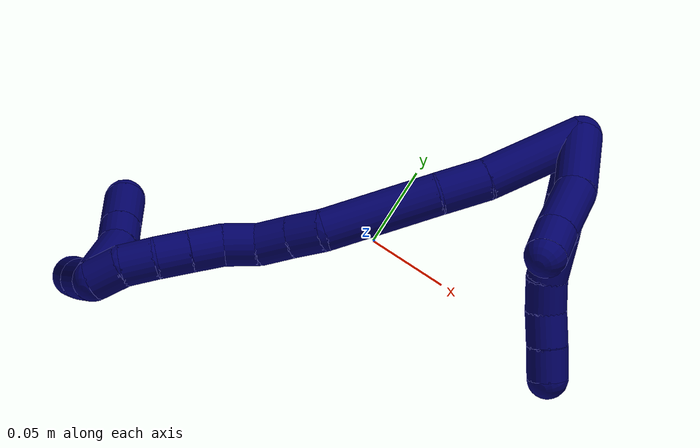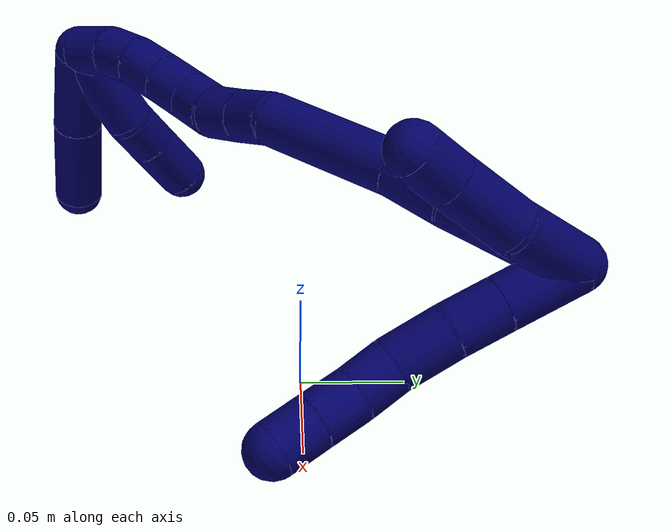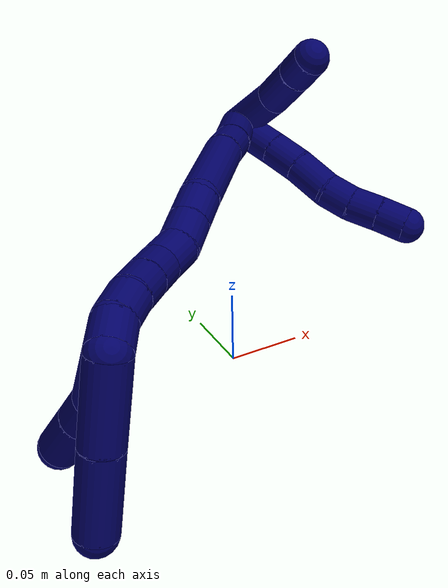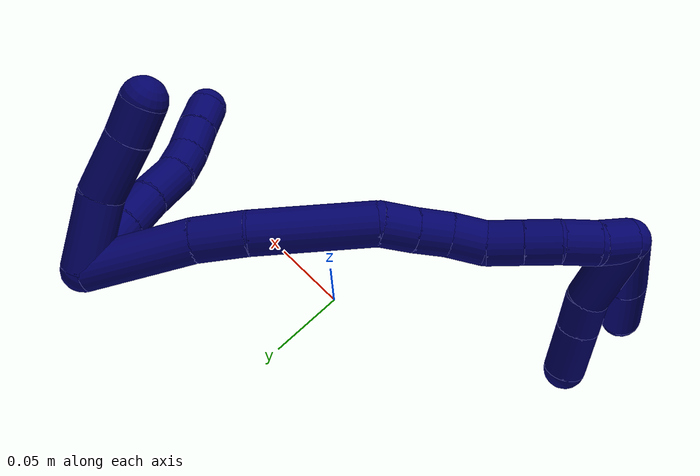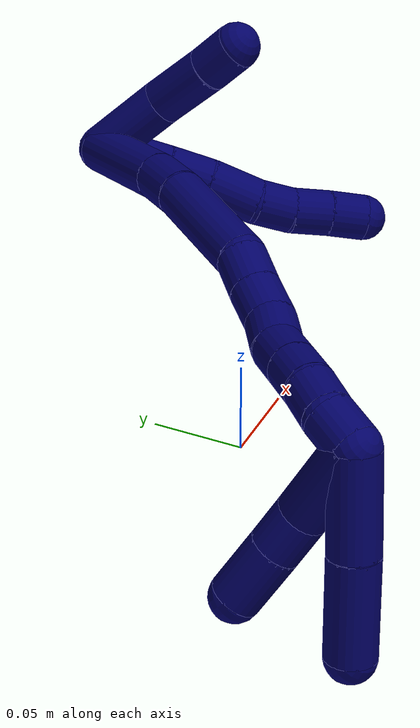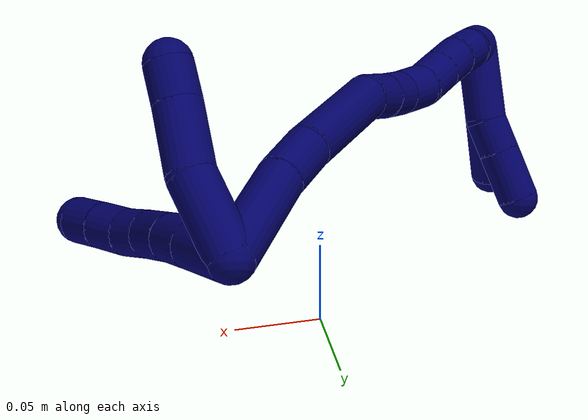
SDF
<sdf version="1.7">
 <world name="default">
  <model name="7">
   <static>0</static>
   <link name="7">
    <collision name="collision-cylinder-e_1_2_8">
     <pose>0.006105 -0.015964 0.006545 1.18171 0.340089 0.229342</pose>
     <geometry><cylinder><radius>0.0125</radius><length>0.036603</length></cylinder></geometry>
     <surface>
      <friction><ode><mu>1.16</mu><mu2>1.16</mu2><slip1>0</slip1><slip2>0</slip2></ode></friction>
      <contact><ode><kp>1e+06</kp><kd>1</kd><max_vel>0</max_vel><min_depth>0.001</min_depth></ode></contact>
     </surface>
    </collision>
    <visual name="visual-cylinder-e_1_2_8">
     <pose>0.006105 -0.015964 0.006545 1.18171 0.340089 0.229342</pose>
     <geometry><cylinder><radius>0.0125</radius><length>0.036603</length></cylinder></geometry>
     <material><ambient>0.003922 0 0.403922 1</ambient></material>
    </visual>
    <collision name="collision-cylinder-e_2_8_9">
     <pose>0.016031 -0.042451 0.017179 1.2002 0.326389 0.224401</pose>
     <geometry><cylinder><radius>0.0125</radius><length>0.023838</length></cylinder></geometry>
     <surface>
      <friction><ode><mu>1.16</mu><mu2>1.16</mu2><slip1>0</slip1><slip2>0</slip2></ode></friction>
      <contact><ode><kp>1e+06</kp><kd>1</kd><max_vel>0</max_vel><min_depth>0.001</min_depth></ode></contact>
     </surface>
    </collision>
    <visual name="visual-cylinder-e_2_8_9">
     <pose>0.016031 -0.042451 0.017179 1.2002 0.326389 0.224401</pose>
     <geometry><cylinder><radius>0.0125</radius><length>0.023838</length></cylinder></geometry>
     <material><ambient>0.003922 0 0.403922 1</ambient></material>
    </visual>
    <collision name="collision-cylinder-e_3_9_10">
     <pose>0.023799 -0.06582 0.024997 1.28823 0.286868 0.21607</pose>
     <geometry><cylinder><radius>0.0125</radius><length>0.027892</length></cylinder></geometry>
     <surface>
      <friction><ode><mu>1.16</mu><mu2>1.16</mu2><slip1>0</slip1><slip2>0</slip2></ode></friction>
      <contact><ode><kp>1e+06</kp><kd>1</kd><max_vel>0</max_vel><min_depth>0.001</min_depth></ode></contact>
     </surface>
    </collision>
    <visual name="visual-cylinder-e_3_9_10">
     <pose>0.023799 -0.06582 0.024997 1.28823 0.286868 0.21607</pose>
     <geometry><cylinder><radius>0.0125</radius><length>0.027892</length></cylinder></geometry>
     <material><ambient>0.003922 0 0.403922 1</ambient></material>
    </visual>
    <collision name="collision-cylinder-e_4_10_11">
     <pose>0.032647 -0.08708 0.031228 1.28185 0.509343 0.383619</pose>
     <geometry><cylinder><radius>0.0125</radius><length>0.020109</length></cylinder></geometry>
     <surface>
      <friction><ode><mu>1.16</mu><mu2>1.16</mu2><slip1>0</slip1><slip2>0</slip2></ode></friction>
      <contact><ode><kp>1e+06</kp><kd>1</kd><max_vel>0</max_vel><min_depth>0.001</min_depth></ode></contact>
     </surface>
    </collision>
    <visual name="visual-cylinder-e_4_10_11">
     <pose>0.032647 -0.08708 0.031228 1.28185 0.509343 0.383619</pose>
     <geometry><cylinder><radius>0.0125</radius><length>0.020109</length></cylinder></geometry>
     <material><ambient>0.003922 0 0.403922 1</ambient></material>
    </visual>
    <collision name="collision-cylinder-e_5_11_12">
     <pose>0.043566 -0.103343 0.037544 1.11847 0.603567 0.384842</pose>
     <geometry><cylinder><radius>0.0125</radius><length>0.0212</length></cylinder></geometry>
     <surface>
      <friction><ode><mu>1.16</mu><mu2>1.16</mu2><slip1>0</slip1><slip2>0</slip2></ode></friction>
      <contact><ode><kp>1e+06</kp><kd>1</kd><max_vel>0</max_vel><min_depth>0.001</min_depth></ode></contact>
     </surface>
    </collision>
    <visual name="visual-cylinder-e_5_11_12">
     <pose>0.043566 -0.103343 0.037544 1.11847 0.603567 0.384842</pose>
     <geometry><cylinder><radius>0.0125</radius><length>0.0212</length></cylinder></geometry>
     <material><ambient>0.003922 0 0.403922 1</ambient></material>
    </visual>
    <collision name="collision-cylinder-e_6_12_6">
     <pose>0.055074 -0.119047 0.044788 1.15908 0.569826 0.378793</pose>
     <geometry><cylinder><radius>0.0125</radius><length>0.020358</length></cylinder></geometry>
     <surface>
      <friction><ode><mu>1.16</mu><mu2>1.16</mu2><slip1>0</slip1><slip2>0</slip2></ode></friction>
      <contact><ode><kp>1e+06</kp><kd>1</kd><max_vel>0</max_vel><min_depth>0.001</min_depth></ode></contact>
     </surface>
    </collision>
    <visual name="visual-cylinder-e_6_12_6">
     <pose>0.055074 -0.119047 0.044788 1.15908 0.569826 0.378793</pose>
     <geometry><cylinder><radius>0.0125</radius><length>0.020358</length></cylinder></geometry>
     <material><ambient>0.003922 0 0.403922 1</ambient></material>
    </visual>
    <collision name="collision-cylinder-e_1_2_13">
     <pose>0.007605 -0.002087 0.020186 0.103021 0.358558 0.018686</pose>
     <geometry><cylinder><radius>0.0125</radius><length>0.043343</length></cylinder></geometry>
     <surface>
      <friction><ode><mu>1.16</mu><mu2>1.16</mu2><slip1>0</slip1><slip2>0</slip2></ode></friction>
      <contact><ode><kp>1e+06</kp><kd>1</kd><max_vel>0</max_vel><min_depth>0.001</min_depth></ode></contact>
     </surface>
    </collision>
    <visual name="visual-cylinder-e_1_2_13">
     <pose>0.007605 -0.002087 0.020186 0.103021 0.358558 0.018686</pose>
     <geometry><cylinder><radius>0.0125</radius><length>0.043343</length></cylinder></geometry>
     <material><ambient>0.003922 0 0.403922 1</ambient></material>
    </visual>
    <collision name="collision-cylinder-e_2_13_14">
     <pose>0.017107 -0.006136 0.057957 0.111115 0.106773 0.005944</pose>
     <geometry><cylinder><radius>0.0125</radius><length>0.035591</length></cylinder></geometry>
     <surface>
      <friction><ode><mu>1.16</mu><mu2>1.16</mu2><slip1>0</slip1><slip2>0</slip2></ode></friction>
      <contact><ode><kp>1e+06</kp><kd>1</kd><max_vel>0</max_vel><min_depth>0.001</min_depth></ode></contact>
     </surface>
    </collision>
    <visual name="visual-cylinder-e_2_13_14">
     <pose>0.017107 -0.006136 0.057957 0.111115 0.106773 0.005944</pose>
     <geometry><cylinder><radius>0.0125</radius><length>0.035591</length></cylinder></geometry>
     <material><ambient>0.003922 0 0.403922 1</ambient></material>
    </visual>
    <collision name="collision-cylinder-e_3_14_5">
     <pose>0.020588 -0.008856 0.085927 0.072875 0.15109 0.005518</pose>
     <geometry><cylinder><radius>0.0125</radius><length>0.021066</length></cylinder></geometry>
     <surface>
      <friction><ode><mu>1.16</mu><mu2>1.16</mu2><slip1>0</slip1><slip2>0</slip2></ode></friction>
      <contact><ode><kp>1e+06</kp><kd>1</kd><max_vel>0</max_vel><min_depth>0.001</min_depth></ode></contact>
     </surface>
    </collision>
    <visual name="visual-cylinder-e_3_14_5">
     <pose>0.020588 -0.008856 0.085927 0.072875 0.15109 0.005518</pose>
     <geometry><cylinder><radius>0.0125</radius><length>0.021066</length></cylinder></geometry>
     <material><ambient>0.003922 0 0.403922 1</ambient></material>
    </visual>
    <collision name="collision-cylinder-e_1_2_15">
     <pose>-0.015772 -0.014729 0.021923 0.591577 -0.538339 -0.167733</pose>
     <geometry><cylinder><radius>0.0125</radius><length>0.061524</length></cylinder></geometry>
     <surface>
      <friction><ode><mu>1.16</mu><mu2>1.16</mu2><slip1>0</slip1><slip2>0</slip2></ode></friction>
      <contact><ode><kp>1e+06</kp><kd>1</kd><max_vel>0</max_vel><min_depth>0.001</min_depth></ode></contact>
     </surface>
    </collision>
    <visual name="visual-cylinder-e_1_2_15">
     <pose>-0.015772 -0.014729 0.021923 0.591577 -0.538339 -0.167733</pose>
     <geometry><cylinder><radius>0.0125</radius><length>0.061524</length></cylinder></geometry>
     <material><ambient>0.003922 0 0.403922 1</ambient></material>
    </visual>
    <collision name="collision-cylinder-e_2_15_16">
     <pose>-0.040506 -0.03593 0.053283 0.601197 -0.664354 -0.213059</pose>
     <geometry><cylinder><radius>0.0125</radius><length>0.029072</length></cylinder></geometry>
     <surface>
      <friction><ode><mu>1.16</mu><mu2>1.16</mu2><slip1>0</slip1><slip2>0</slip2></ode></friction>
      <contact><ode><kp>1e+06</kp><kd>1</kd><max_vel>0</max_vel><min_depth>0.001</min_depth></ode></contact>
     </surface>
    </collision>
    <visual name="visual-cylinder-e_2_15_16">
     <pose>-0.040506 -0.03593 0.053283 0.601197 -0.664354 -0.213059</pose>
     <geometry><cylinder><radius>0.0125</radius><length>0.029072</length></cylinder></geometry>
     <material><ambient>0.003922 0 0.403922 1</ambient></material>
    </visual>
    <collision name="collision-cylinder-e_3_16_17">
     <pose>-0.071037 -0.061234 0.081781 0.779349 -0.677794 -0.287525</pose>
     <geometry><cylinder><radius>0.0125</radius><length>0.068792</length></cylinder></geometry>
     <surface>
      <friction><ode><mu>1.16</mu><mu2>1.16</mu2><slip1>0</slip1><slip2>0</slip2></ode></friction>
      <contact><ode><kp>1e+06</kp><kd>1</kd><max_vel>0</max_vel><min_depth>0.001</min_depth></ode></contact>
     </surface>
    </collision>
    <visual name="visual-cylinder-e_3_16_17">
     <pose>-0.071037 -0.061234 0.081781 0.779349 -0.677794 -0.287525</pose>
     <geometry><cylinder><radius>0.0125</radius><length>0.068792</length></cylinder></geometry>
     <material><ambient>0.003922 0 0.403922 1</ambient></material>
    </visual>
    <collision name="collision-cylinder-e_4_17_18">
     <pose>-0.099607 -0.086891 0.103262 1.22994 -0.768413 -0.55634</pose>
     <geometry><cylinder><radius>0.0125</radius><length>0.020146</length></cylinder></geometry>
     <surface>
      <friction><ode><mu>1.16</mu><mu2>1.16</mu2><slip1>0</slip1><slip2>0</slip2></ode></friction>
      <contact><ode><kp>1e+06</kp><kd>1</kd><max_vel>0</max_vel><min_depth>0.001</min_depth></ode></contact>
     </surface>
    </collision>
    <visual name="visual-cylinder-e_4_17_18">
     <pose>-0.099607 -0.086891 0.103262 1.22994 -0.768413 -0.55634</pose>
     <geometry><cylinder><radius>0.0125</radius><length>0.020146</length></cylinder></geometry>
     <material><ambient>0.003922 0 0.403922 1</ambient></material>
    </visual>
    <collision name="collision-cylinder-e_5_18_19">
     <pose>-0.113511 -0.100512 0.108679 1.15547 -0.748962 -0.501667</pose>
     <geometry><cylinder><radius>0.0125</radius><length>0.02028</length></cylinder></geometry>
     <surface>
      <friction><ode><mu>1.16</mu><mu2>1.16</mu2><slip1>0</slip1><slip2>0</slip2></ode></friction>
      <contact><ode><kp>1e+06</kp><kd>1</kd><max_vel>0</max_vel><min_depth>0.001</min_depth></ode></contact>
     </surface>
    </collision>
    <visual name="visual-cylinder-e_5_18_19">
     <pose>-0.113511 -0.100512 0.108679 1.15547 -0.748962 -0.501667</pose>
     <geometry><cylinder><radius>0.0125</radius><length>0.02028</length></cylinder></geometry>
     <material><ambient>0.003922 0 0.403922 1</ambient></material>
    </visual>
    <collision name="collision-cylinder-e_6_19_20">
     <pose>-0.128815 -0.111572 0.115235 0.875329 -0.986515 -0.492874</pose>
     <geometry><cylinder><radius>0.0125</radius><length>0.02014</length></cylinder></geometry>
     <surface>
      <friction><ode><mu>1.16</mu><mu2>1.16</mu2><slip1>0</slip1><slip2>0</slip2></ode></friction>
      <contact><ode><kp>1e+06</kp><kd>1</kd><max_vel>0</max_vel><min_depth>0.001</min_depth></ode></contact>
     </surface>
    </collision>
    <visual name="visual-cylinder-e_6_19_20">
     <pose>-0.128815 -0.111572 0.115235 0.875329 -0.986515 -0.492874</pose>
     <geometry><cylinder><radius>0.0125</radius><length>0.02014</length></cylinder></geometry>
     <material><ambient>0.003922 0 0.403922 1</ambient></material>
    </visual>
    <collision name="collision-cylinder-e_7_20_21">
     <pose>-0.144196 -0.11994 0.124664 0.610057 -0.772585 -0.254734</pose>
     <geometry><cylinder><radius>0.0125</radius><length>0.020004</length></cylinder></geometry>
     <surface>
      <friction><ode><mu>1.16</mu><mu2>1.16</mu2><slip1>0</slip1><slip2>0</slip2></ode></friction>
      <contact><ode><kp>1e+06</kp><kd>1</kd><max_vel>0</max_vel><min_depth>0.001</min_depth></ode></contact>
     </surface>
    </collision>
    <visual name="visual-cylinder-e_7_20_21">
     <pose>-0.144196 -0.11994 0.124664 0.610057 -0.772585 -0.254734</pose>
     <geometry><cylinder><radius>0.0125</radius><length>0.020004</length></cylinder></geometry>
     <material><ambient>0.003922 0 0.403922 1</ambient></material>
    </visual>
    <collision name="collision-cylinder-e_8_21_22">
     <pose>-0.15816 -0.128334 0.136294 0.640281 -0.771385 -0.267625</pose>
     <geometry><cylinder><radius>0.0125</radius><length>0.020035</length></cylinder></geometry>
     <surface>
      <friction><ode><mu>1.16</mu><mu2>1.16</mu2><slip1>0</slip1><slip2>0</slip2></ode></friction>
      <contact><ode><kp>1e+06</kp><kd>1</kd><max_vel>0</max_vel><min_depth>0.001</min_depth></ode></contact>
     </surface>
    </collision>
    <visual name="visual-cylinder-e_8_21_22">
     <pose>-0.15816 -0.128334 0.136294 0.640281 -0.771385 -0.267625</pose>
     <geometry><cylinder><radius>0.0125</radius><length>0.020035</length></cylinder></geometry>
     <material><ambient>0.003922 0 0.403922 1</ambient></material>
    </visual>
    <collision name="collision-cylinder-e_9_22_23">
     <pose>-0.172073 -0.138152 0.14669 0.872824 -0.765242 -0.371096</pose>
     <geometry><cylinder><radius>0.0125</radius><length>0.020007</length></cylinder></geometry>
     <surface>
      <friction><ode><mu>1.16</mu><mu2>1.16</mu2><slip1>0</slip1><slip2>0</slip2></ode></friction>
      <contact><ode><kp>1e+06</kp><kd>1</kd><max_vel>0</max_vel><min_depth>0.001</min_depth></ode></contact>
     </surface>
    </collision>
    <visual name="visual-cylinder-e_9_22_23">
     <pose>-0.172073 -0.138152 0.14669 0.872824 -0.765242 -0.371096</pose>
     <geometry><cylinder><radius>0.0125</radius><length>0.020007</length></cylinder></geometry>
     <material><ambient>0.003922 0 0.403922 1</ambient></material>
    </visual>
    <collision name="collision-cylinder-e_10_23_1">
     <pose>-0.184174 -0.15134 0.155146 1.10837 -0.543416 -0.341477</pose>
     <geometry><cylinder><radius>0.0125</radius><length>0.020001</length></cylinder></geometry>
     <surface>
      <friction><ode><mu>1.16</mu><mu2>1.16</mu2><slip1>0</slip1><slip2>0</slip2></ode></friction>
      <contact><ode><kp>1e+06</kp><kd>1</kd><max_vel>0</max_vel><min_depth>0.001</min_depth></ode></contact>
     </surface>
    </collision>
    <visual name="visual-cylinder-e_10_23_1">
     <pose>-0.184174 -0.15134 0.155146 1.10837 -0.543416 -0.341477</pose>
     <geometry><cylinder><radius>0.0125</radius><length>0.020001</length></cylinder></geometry>
     <material><ambient>0.003922 0 0.403922 1</ambient></material>
    </visual>
    <collision name="collision-cylinder-e_1_1_24">
     <pose>-0.196191 -0.176965 0.143258 2.28926 -0.279413 -0.600752</pose>
     <geometry><cylinder><radius>0.0125</radius><length>0.049649</length></cylinder></geometry>
     <surface>
      <friction><ode><mu>1.16</mu><mu2>1.16</mu2><slip1>0</slip1><slip2>0</slip2></ode></friction>
      <contact><ode><kp>1e+06</kp><kd>1</kd><max_vel>0</max_vel><min_depth>0.001</min_depth></ode></contact>
     </surface>
    </collision>
    <visual name="visual-cylinder-e_1_1_24">
     <pose>-0.196191 -0.176965 0.143258 2.28926 -0.279413 -0.600752</pose>
     <geometry><cylinder><radius>0.0125</radius><length>0.049649</length></cylinder></geometry>
     <material><ambient>0.003922 0 0.403922 1</ambient></material>
    </visual>
    <collision name="collision-cylinder-e_2_24_4">
     <pose>-0.209402 -0.212599 0.110788 2.32986 -0.255599 -0.581128</pose>
     <geometry><cylinder><radius>0.0125</radius><length>0.050351</length></cylinder></geometry>
     <surface>
      <friction><ode><mu>1.16</mu><mu2>1.16</mu2><slip1>0</slip1><slip2>0</slip2></ode></friction>
      <contact><ode><kp>1e+06</kp><kd>1</kd><max_vel>0</max_vel><min_depth>0.001</min_depth></ode></contact>
     </surface>
    </collision>
    <visual name="visual-cylinder-e_2_24_4">
     <pose>-0.209402 -0.212599 0.110788 2.32986 -0.255599 -0.581128</pose>
     <geometry><cylinder><radius>0.0125</radius><length>0.050351</length></cylinder></geometry>
     <material><ambient>0.003922 0 0.403922 1</ambient></material>
    </visual>
    <collision name="collision-cylinder-e_1_1_25">
     <pose>-0.191756 -0.164448 0.13635 2.90522 -0.103293 -0.821185</pose>
     <geometry><cylinder><radius>0.0125</radius><length>0.046771</length></cylinder></geometry>
     <surface>
      <friction><ode><mu>1.16</mu><mu2>1.16</mu2><slip1>0</slip1><slip2>0</slip2></ode></friction>
      <contact><ode><kp>1e+06</kp><kd>1</kd><max_vel>0</max_vel><min_depth>0.001</min_depth></ode></contact>
     </surface>
    </collision>
    <visual name="visual-cylinder-e_1_1_25">
     <pose>-0.191756 -0.164448 0.13635 2.90522 -0.103293 -0.821185</pose>
     <geometry><cylinder><radius>0.0125</radius><length>0.046771</length></cylinder></geometry>
     <material><ambient>0.003922 0 0.403922 1</ambient></material>
    </visual>
    <collision name="collision-cylinder-e_2_25_26">
     <pose>-0.198024 -0.171984 0.103919 2.932 -0.366904 -2.11013</pose>
     <geometry><cylinder><radius>0.0125</radius><length>0.021505</length></cylinder></geometry>
     <surface>
      <friction><ode><mu>1.16</mu><mu2>1.16</mu2><slip1>0</slip1><slip2>0</slip2></ode></friction>
      <contact><ode><kp>1e+06</kp><kd>1</kd><max_vel>0</max_vel><min_depth>0.001</min_depth></ode></contact>
     </surface>
    </collision>
    <visual name="visual-cylinder-e_2_25_26">
     <pose>-0.198024 -0.171984 0.103919 2.932 -0.366904 -2.11013</pose>
     <geometry><cylinder><radius>0.0125</radius><length>0.021505</length></cylinder></geometry>
     <material><ambient>0.003922 0 0.403922 1</ambient></material>
    </visual>
    <collision name="collision-cylinder-e_3_26_3">
     <pose>-0.207472 -0.176988 0.079547 2.9439 -0.360213 -2.14415</pose>
     <geometry><cylinder><radius>0.0125</radius><length>0.031724</length></cylinder></geometry>
     <surface>
      <friction><ode><mu>1.16</mu><mu2>1.16</mu2><slip1>0</slip1><slip2>0</slip2></ode></friction>
      <contact><ode><kp>1e+06</kp><kd>1</kd><max_vel>0</max_vel><min_depth>0.001</min_depth></ode></contact>
     </surface>
    </collision>
    <visual name="visual-cylinder-e_3_26_3">
     <pose>-0.207472 -0.176988 0.079547 2.9439 -0.360213 -2.14415</pose>
     <geometry><cylinder><radius>0.0125</radius><length>0.031724</length></cylinder></geometry>
     <material><ambient>0.003922 0 0.403922 1</ambient></material>
    </visual>
    <collision name="collision-sphere-3">
     <pose>-0.213063 -0.179903 0.064992 0 -0 0</pose>
     <geometry><sphere><radius>0.0125</radius></sphere></geometry>
     <surface>
      <friction><ode><mu>1.16</mu><mu2>1.16</mu2><slip1>0</slip1><slip2>0</slip2></ode></friction>
      <contact><ode><kp>1e+06</kp><kd>1</kd><max_vel>0</max_vel><min_depth>0.001</min_depth></ode></contact>
     </surface>
    </collision>
    <visual name="visual-sphere-3">
     <pose>-0.213063 -0.179903 0.064992 0 -0 0</pose>
     <geometry><sphere><radius>0.0125</radius></sphere></geometry>
     <material><ambient>0.003922 0 0.403922 1</ambient></material>
    </visual>
    <collision name="collision-sphere-26">
     <pose>-0.201882 -0.174072 0.094101 0 -0 0</pose>
     <geometry><sphere><radius>0.0125</radius></sphere></geometry>
     <surface>
      <friction><ode><mu>1.16</mu><mu2>1.16</mu2><slip1>0</slip1><slip2>0</slip2></ode></friction>
      <contact><ode><kp>1e+06</kp><kd>1</kd><max_vel>0</max_vel><min_depth>0.001</min_depth></ode></contact>
     </surface>
    </collision>
    <visual name="visual-sphere-26">
     <pose>-0.201882 -0.174072 0.094101 0 -0 0</pose>
     <geometry><sphere><radius>0.0125</radius></sphere></geometry>
     <material><ambient>0.003922 0 0.403922 1</ambient></material>
    </visual>
    <collision name="collision-sphere-25">
     <pose>-0.194167 -0.169896 0.113736 0 -0 0</pose>
     <geometry><sphere><radius>0.0125</radius></sphere></geometry>
     <surface>
      <friction><ode><mu>1.16</mu><mu2>1.16</mu2><slip1>0</slip1><slip2>0</slip2></ode></friction>
      <contact><ode><kp>1e+06</kp><kd>1</kd><max_vel>0</max_vel><min_depth>0.001</min_depth></ode></contact>
     </surface>
    </collision>
    <visual name="visual-sphere-25">
     <pose>-0.194167 -0.169896 0.113736 0 -0 0</pose>
     <geometry><sphere><radius>0.0125</radius></sphere></geometry>
     <material><ambient>0.003922 0 0.403922 1</ambient></material>
    </visual>
    <collision name="collision-sphere-4">
     <pose>-0.215767 -0.23027 0.094024 0 -0 0</pose>
     <geometry><sphere><radius>0.0125</radius></sphere></geometry>
     <surface>
      <friction><ode><mu>1.16</mu><mu2>1.16</mu2><slip1>0</slip1><slip2>0</slip2></ode></friction>
      <contact><ode><kp>1e+06</kp><kd>1</kd><max_vel>0</max_vel><min_depth>0.001</min_depth></ode></contact>
     </surface>
    </collision>
    <visual name="visual-sphere-4">
     <pose>-0.215767 -0.23027 0.094024 0 -0 0</pose>
     <geometry><sphere><radius>0.0125</radius></sphere></geometry>
     <material><ambient>0.003922 0 0.403922 1</ambient></material>
    </visual>
    <collision name="collision-sphere-24">
     <pose>-0.203037 -0.194928 0.127551 0 -0 0</pose>
     <geometry><sphere><radius>0.0125</radius></sphere></geometry>
     <surface>
      <friction><ode><mu>1.16</mu><mu2>1.16</mu2><slip1>0</slip1><slip2>0</slip2></ode></friction>
      <contact><ode><kp>1e+06</kp><kd>1</kd><max_vel>0</max_vel><min_depth>0.001</min_depth></ode></contact>
     </surface>
    </collision>
    <visual name="visual-sphere-24">
     <pose>-0.203037 -0.194928 0.127551 0 -0 0</pose>
     <geometry><sphere><radius>0.0125</radius></sphere></geometry>
     <material><ambient>0.003922 0 0.403922 1</ambient></material>
    </visual>
    <collision name="collision-sphere-1">
     <pose>-0.189345 -0.159001 0.158964 0 -0 0</pose>
     <geometry><sphere><radius>0.0125</radius></sphere></geometry>
     <surface>
      <friction><ode><mu>1.16</mu><mu2>1.16</mu2><slip1>0</slip1><slip2>0</slip2></ode></friction>
      <contact><ode><kp>1e+06</kp><kd>1</kd><max_vel>0</max_vel><min_depth>0.001</min_depth></ode></contact>
     </surface>
    </collision>
    <visual name="visual-sphere-1">
     <pose>-0.189345 -0.159001 0.158964 0 -0 0</pose>
     <geometry><sphere><radius>0.0125</radius></sphere></geometry>
     <material><ambient>0.003922 0 0.403922 1</ambient></material>
    </visual>
    <collision name="collision-sphere-23">
     <pose>-0.179003 -0.143679 0.151327 0 -0 0</pose>
     <geometry><sphere><radius>0.0125</radius></sphere></geometry>
     <surface>
      <friction><ode><mu>1.16</mu><mu2>1.16</mu2><slip1>0</slip1><slip2>0</slip2></ode></friction>
      <contact><ode><kp>1e+06</kp><kd>1</kd><max_vel>0</max_vel><min_depth>0.001</min_depth></ode></contact>
     </surface>
    </collision>
    <visual name="visual-sphere-23">
     <pose>-0.179003 -0.143679 0.151327 0 -0 0</pose>
     <geometry><sphere><radius>0.0125</radius></sphere></geometry>
     <material><ambient>0.003922 0 0.403922 1</ambient></material>
    </visual>
    <collision name="collision-sphere-22">
     <pose>-0.165144 -0.132624 0.142054 0 -0 0</pose>
     <geometry><sphere><radius>0.0125</radius></sphere></geometry>
     <surface>
      <friction><ode><mu>1.16</mu><mu2>1.16</mu2><slip1>0</slip1><slip2>0</slip2></ode></friction>
      <contact><ode><kp>1e+06</kp><kd>1</kd><max_vel>0</max_vel><min_depth>0.001</min_depth></ode></contact>
     </surface>
    </collision>
    <visual name="visual-sphere-22">
     <pose>-0.165144 -0.132624 0.142054 0 -0 0</pose>
     <geometry><sphere><radius>0.0125</radius></sphere></geometry>
     <material><ambient>0.003922 0 0.403922 1</ambient></material>
    </visual>
    <collision name="collision-sphere-21">
     <pose>-0.151177 -0.124043 0.130535 0 -0 0</pose>
     <geometry><sphere><radius>0.0125</radius></sphere></geometry>
     <surface>
      <friction><ode><mu>1.16</mu><mu2>1.16</mu2><slip1>0</slip1><slip2>0</slip2></ode></friction>
      <contact><ode><kp>1e+06</kp><kd>1</kd><max_vel>0</max_vel><min_depth>0.001</min_depth></ode></contact>
     </surface>
    </collision>
    <visual name="visual-sphere-21">
     <pose>-0.151177 -0.124043 0.130535 0 -0 0</pose>
     <geometry><sphere><radius>0.0125</radius></sphere></geometry>
     <material><ambient>0.003922 0 0.403922 1</ambient></material>
    </visual>
    <collision name="collision-sphere-12">
     <pose>0.049583 -0.111193 0.041358 0 -0 0</pose>
     <geometry><sphere><radius>0.0125</radius></sphere></geometry>
     <surface>
      <friction><ode><mu>1.16</mu><mu2>1.16</mu2><slip1>0</slip1><slip2>0</slip2></ode></friction>
      <contact><ode><kp>1e+06</kp><kd>1</kd><max_vel>0</max_vel><min_depth>0.001</min_depth></ode></contact>
     </surface>
    </collision>
    <visual name="visual-sphere-12">
     <pose>0.049583 -0.111193 0.041358 0 -0 0</pose>
     <geometry><sphere><radius>0.0125</radius></sphere></geometry>
     <material><ambient>0.003922 0 0.403922 1</ambient></material>
    </visual>
    <collision name="collision-sphere-11">
     <pose>0.03755 -0.095494 0.033729 0 -0 0</pose>
     <geometry><sphere><radius>0.0125</radius></sphere></geometry>
     <surface>
      <friction><ode><mu>1.16</mu><mu2>1.16</mu2><slip1>0</slip1><slip2>0</slip2></ode></friction>
      <contact><ode><kp>1e+06</kp><kd>1</kd><max_vel>0</max_vel><min_depth>0.001</min_depth></ode></contact>
     </surface>
    </collision>
    <visual name="visual-sphere-11">
     <pose>0.03755 -0.095494 0.033729 0 -0 0</pose>
     <geometry><sphere><radius>0.0125</radius></sphere></geometry>
     <material><ambient>0.003922 0 0.403922 1</ambient></material>
    </visual>
    <collision name="collision-sphere-10">
     <pose>0.027745 -0.078666 0.028727 0 -0 0</pose>
     <geometry><sphere><radius>0.0125</radius></sphere></geometry>
     <surface>
      <friction><ode><mu>1.16</mu><mu2>1.16</mu2><slip1>0</slip1><slip2>0</slip2></ode></friction>
      <contact><ode><kp>1e+06</kp><kd>1</kd><max_vel>0</max_vel><min_depth>0.001</min_depth></ode></contact>
     </surface>
    </collision>
    <visual name="visual-sphere-10">
     <pose>0.027745 -0.078666 0.028727 0 -0 0</pose>
     <geometry><sphere><radius>0.0125</radius></sphere></geometry>
     <material><ambient>0.003922 0 0.403922 1</ambient></material>
    </visual>
    <collision name="collision-sphere-9">
     <pose>0.019853 -0.052974 0.021268 0 -0 0</pose>
     <geometry><sphere><radius>0.0125</radius></sphere></geometry>
     <surface>
      <friction><ode><mu>1.16</mu><mu2>1.16</mu2><slip1>0</slip1><slip2>0</slip2></ode></friction>
      <contact><ode><kp>1e+06</kp><kd>1</kd><max_vel>0</max_vel><min_depth>0.001</min_depth></ode></contact>
     </surface>
    </collision>
    <visual name="visual-sphere-9">
     <pose>0.019853 -0.052974 0.021268 0 -0 0</pose>
     <geometry><sphere><radius>0.0125</radius></sphere></geometry>
     <material><ambient>0.003922 0 0.403922 1</ambient></material>
    </visual>
    <collision name="collision-sphere-2">
     <geometry><sphere><radius>0.0125</radius></sphere></geometry>
     <surface>
      <friction><ode><mu>1.16</mu><mu2>1.16</mu2><slip1>0</slip1><slip2>0</slip2></ode></friction>
      <contact><ode><kp>1e+06</kp><kd>1</kd><max_vel>0</max_vel><min_depth>0.001</min_depth></ode></contact>
     </surface>
    </collision>
    <visual name="visual-sphere-2">
     <geometry><sphere><radius>0.0125</radius></sphere></geometry>
     <material><ambient>0.003922 0 0.403922 1</ambient></material>
    </visual>
    <collision name="collision-sphere-19">
     <pose>-0.120415 -0.107307 0.111676 0 -0 0</pose>
     <geometry><sphere><radius>0.0125</radius></sphere></geometry>
     <surface>
      <friction><ode><mu>1.16</mu><mu2>1.16</mu2><slip1>0</slip1><slip2>0</slip2></ode></friction>
      <contact><ode><kp>1e+06</kp><kd>1</kd><max_vel>0</max_vel><min_depth>0.001</min_depth></ode></contact>
     </surface>
    </collision>
    <visual name="visual-sphere-19">
     <pose>-0.120415 -0.107307 0.111676 0 -0 0</pose>
     <geometry><sphere><radius>0.0125</radius></sphere></geometry>
     <material><ambient>0.003922 0 0.403922 1</ambient></material>
    </visual>
    <collision name="collision-sphere-8">
     <pose>0.01221 -0.031927 0.01309 0 -0 0</pose>
     <geometry><sphere><radius>0.0125</radius></sphere></geometry>
     <surface>
      <friction><ode><mu>1.16</mu><mu2>1.16</mu2><slip1>0</slip1><slip2>0</slip2></ode></friction>
      <contact><ode><kp>1e+06</kp><kd>1</kd><max_vel>0</max_vel><min_depth>0.001</min_depth></ode></contact>
     </surface>
    </collision>
    <visual name="visual-sphere-8">
     <pose>0.01221 -0.031927 0.01309 0 -0 0</pose>
     <geometry><sphere><radius>0.0125</radius></sphere></geometry>
     <material><ambient>0.003922 0 0.403922 1</ambient></material>
    </visual>
    <collision name="collision-sphere-6">
     <pose>0.060566 -0.126902 0.048218 0 -0 0</pose>
     <geometry><sphere><radius>0.0125</radius></sphere></geometry>
     <surface>
      <friction><ode><mu>1.16</mu><mu2>1.16</mu2><slip1>0</slip1><slip2>0</slip2></ode></friction>
      <contact><ode><kp>1e+06</kp><kd>1</kd><max_vel>0</max_vel><min_depth>0.001</min_depth></ode></contact>
     </surface>
    </collision>
    <visual name="visual-sphere-6">
     <pose>0.060566 -0.126902 0.048218 0 -0 0</pose>
     <geometry><sphere><radius>0.0125</radius></sphere></geometry>
     <material><ambient>0.003922 0 0.403922 1</ambient></material>
    </visual>
    <collision name="collision-sphere-13">
     <pose>0.01521 -0.004174 0.040371 0 -0 0</pose>
     <geometry><sphere><radius>0.0125</radius></sphere></geometry>
     <surface>
      <friction><ode><mu>1.16</mu><mu2>1.16</mu2><slip1>0</slip1><slip2>0</slip2></ode></friction>
      <contact><ode><kp>1e+06</kp><kd>1</kd><max_vel>0</max_vel><min_depth>0.001</min_depth></ode></contact>
     </surface>
    </collision>
    <visual name="visual-sphere-13">
     <pose>0.01521 -0.004174 0.040371 0 -0 0</pose>
     <geometry><sphere><radius>0.0125</radius></sphere></geometry>
     <material><ambient>0.003922 0 0.403922 1</ambient></material>
    </visual>
    <collision name="collision-sphere-14">
     <pose>0.019003 -0.008098 0.075542 0 -0 0</pose>
     <geometry><sphere><radius>0.0125</radius></sphere></geometry>
     <surface>
      <friction><ode><mu>1.16</mu><mu2>1.16</mu2><slip1>0</slip1><slip2>0</slip2></ode></friction>
      <contact><ode><kp>1e+06</kp><kd>1</kd><max_vel>0</max_vel><min_depth>0.001</min_depth></ode></contact>
     </surface>
    </collision>
    <visual name="visual-sphere-14">
     <pose>0.019003 -0.008098 0.075542 0 -0 0</pose>
     <geometry><sphere><radius>0.0125</radius></sphere></geometry>
     <material><ambient>0.003922 0 0.403922 1</ambient></material>
    </visual>
    <collision name="collision-sphere-5">
     <pose>0.022174 -0.009614 0.096312 0 -0 0</pose>
     <geometry><sphere><radius>0.0125</radius></sphere></geometry>
     <surface>
      <friction><ode><mu>1.16</mu><mu2>1.16</mu2><slip1>0</slip1><slip2>0</slip2></ode></friction>
      <contact><ode><kp>1e+06</kp><kd>1</kd><max_vel>0</max_vel><min_depth>0.001</min_depth></ode></contact>
     </surface>
    </collision>
    <visual name="visual-sphere-5">
     <pose>0.022174 -0.009614 0.096312 0 -0 0</pose>
     <geometry><sphere><radius>0.0125</radius></sphere></geometry>
     <material><ambient>0.003922 0 0.403922 1</ambient></material>
    </visual>
    <collision name="collision-sphere-15">
     <pose>-0.031544 -0.029457 0.043845 0 -0 0</pose>
     <geometry><sphere><radius>0.0125</radius></sphere></geometry>
     <surface>
      <friction><ode><mu>1.16</mu><mu2>1.16</mu2><slip1>0</slip1><slip2>0</slip2></ode></friction>
      <contact><ode><kp>1e+06</kp><kd>1</kd><max_vel>0</max_vel><min_depth>0.001</min_depth></ode></contact>
     </surface>
    </collision>
    <visual name="visual-sphere-15">
     <pose>-0.031544 -0.029457 0.043845 0 -0 0</pose>
     <geometry><sphere><radius>0.0125</radius></sphere></geometry>
     <material><ambient>0.003922 0 0.403922 1</ambient></material>
    </visual>
    <collision name="collision-sphere-16">
     <pose>-0.049468 -0.042404 0.062721 0 -0 0</pose>
     <geometry><sphere><radius>0.0125</radius></sphere></geometry>
     <surface>
      <friction><ode><mu>1.16</mu><mu2>1.16</mu2><slip1>0</slip1><slip2>0</slip2></ode></friction>
      <contact><ode><kp>1e+06</kp><kd>1</kd><max_vel>0</max_vel><min_depth>0.001</min_depth></ode></contact>
     </surface>
    </collision>
    <visual name="visual-sphere-16">
     <pose>-0.049468 -0.042404 0.062721 0 -0 0</pose>
     <geometry><sphere><radius>0.0125</radius></sphere></geometry>
     <material><ambient>0.003922 0 0.403922 1</ambient></material>
    </visual>
    <collision name="collision-sphere-17">
     <pose>-0.092606 -0.080065 0.100841 0 -0 0</pose>
     <geometry><sphere><radius>0.0125</radius></sphere></geometry>
     <surface>
      <friction><ode><mu>1.16</mu><mu2>1.16</mu2><slip1>0</slip1><slip2>0</slip2></ode></friction>
      <contact><ode><kp>1e+06</kp><kd>1</kd><max_vel>0</max_vel><min_depth>0.001</min_depth></ode></contact>
     </surface>
    </collision>
    <visual name="visual-sphere-17">
     <pose>-0.092606 -0.080065 0.100841 0 -0 0</pose>
     <geometry><sphere><radius>0.0125</radius></sphere></geometry>
     <material><ambient>0.003922 0 0.403922 1</ambient></material>
    </visual>
    <collision name="collision-sphere-18">
     <pose>-0.106607 -0.093717 0.105683 0 -0 0</pose>
     <geometry><sphere><radius>0.0125</radius></sphere></geometry>
     <surface>
      <friction><ode><mu>1.16</mu><mu2>1.16</mu2><slip1>0</slip1><slip2>0</slip2></ode></friction>
      <contact><ode><kp>1e+06</kp><kd>1</kd><max_vel>0</max_vel><min_depth>0.001</min_depth></ode></contact>
     </surface>
    </collision>
    <visual name="visual-sphere-18">
     <pose>-0.106607 -0.093717 0.105683 0 -0 0</pose>
     <geometry><sphere><radius>0.0125</radius></sphere></geometry>
     <material><ambient>0.003922 0 0.403922 1</ambient></material>
    </visual>
    <collision name="collision-sphere-20">
     <pose>-0.137215 -0.115836 0.118794 0 -0 0</pose>
     <geometry><sphere><radius>0.0125</radius></sphere></geometry>
     <surface>
      <friction><ode><mu>1.16</mu><mu2>1.16</mu2><slip1>0</slip1><slip2>0</slip2></ode></friction>
      <contact><ode><kp>1e+06</kp><kd>1</kd><max_vel>0</max_vel><min_depth>0.001</min_depth></ode></contact>
     </surface>
    </collision>
    <visual name="visual-sphere-20">
     <pose>-0.137215 -0.115836 0.118794 0 -0 0</pose>
     <geometry><sphere><radius>0.0125</radius></sphere></geometry>
     <material><ambient>0.003922 0 0.403922 1</ambient></material>
    </visual>
    <inertial>
     <pose>-0.08249 -0.092998 0.078196 0 -0 0</pose>
     <mass>0.75</mass>
     <inertia><ixx>5.5e-05</ixx><ixy>0</ixy><ixz>0</ixz><iyy>-4e-06</iyy><iyz>0</iyz><izz>0.00012</izz></inertia>
    </inertial>
   </link>
   <pose>0.067515 0.113177 0.119157 0.73411 -0.081504 -0.012001</pose>
  </model>
 </world>
</sdf>
